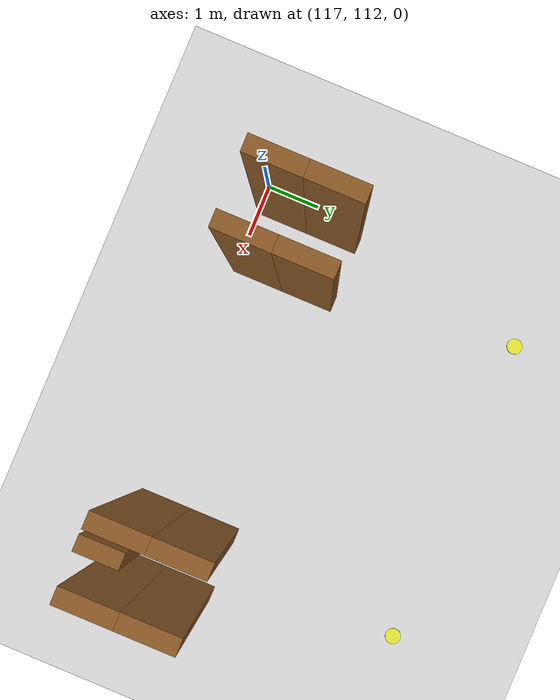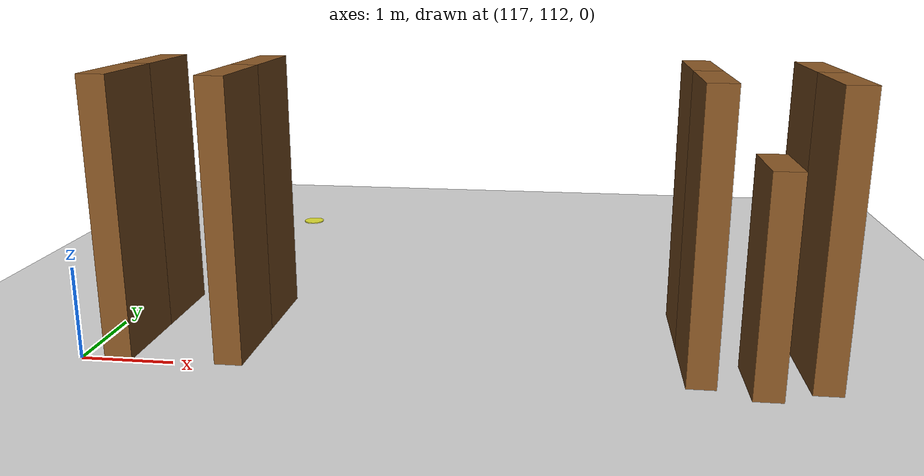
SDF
<sdf version="1.9">
 <world name="realistic_warehouse_150x200m">
  <model name="ground_plane">
   <static>true</static>
   <pose>68.5 102.0 0 0 0 0</pose>
   <link name="ground_link">
    <visual name="ground_visual">
     <geometry><box><size>127.0 194.0 0.01</size></box></geometry>
     <material><ambient>0.85 0.85 0.85 1.0</ambient><diffuse>0.85 0.85 0.85 1.0</diffuse></material>
    </visual>
    <collision name="ground_visual_collision">
     <geometry><box><size>127.0 194.0 0.01</size></box></geometry>
    </collision>
    <collision name="ground_collision">
     <geometry><plane><normal>0 0 1</normal><size>127.0 194.0</size></plane></geometry>
    </collision>
   </link>
  </model>
  <model name="rack_Zone_F_A3_S0_953">
   <static>true</static>
   <pose>117.4 112.5 1.5 0 0 0</pose>
   <link name="rack_Zone_F_A3_S0_953_link">
    <visual name="rack_Zone_F_A3_S0_953_vis">
     <geometry><box><size>0.3 1.0 3.0</size></box></geometry>
     <material><ambient>0.55 0.35 0.15 1.0</ambient><diffuse>0.55 0.35 0.15 1.0</diffuse></material>
    </visual>
    <collision name="rack_Zone_F_A3_S0_953_vis_collision">
     <geometry><box><size>0.3 1.0 3.0</size></box></geometry>
    </collision>
   </link>
  </model>
  <model name="rack_Zone_F_A3_S0_954">
   <static>true</static>
   <pose>117.4 113.5 1.5 0 0 0</pose>
   <link name="rack_Zone_F_A3_S0_954_link">
    <visual name="rack_Zone_F_A3_S0_954_vis">
     <geometry><box><size>0.3 1.0 3.0</size></box></geometry>
     <material><ambient>0.55 0.35 0.15 1.0</ambient><diffuse>0.55 0.35 0.15 1.0</diffuse></material>
    </visual>
    <collision name="rack_Zone_F_A3_S0_954_vis_collision">
     <geometry><box><size>0.3 1.0 3.0</size></box></geometry>
    </collision>
   </link>
  </model>
  <model name="rack_Zone_F_A3_S0_955">
   <static>true</static>
   <pose>118.6 112.5 1.5 0 0 0</pose>
   <link name="rack_Zone_F_A3_S0_955_link">
    <visual name="rack_Zone_F_A3_S0_955_vis">
     <geometry><box><size>0.3 1.0 3.0</size></box></geometry>
     <material><ambient>0.55 0.35 0.15 1.0</ambient><diffuse>0.55 0.35 0.15 1.0</diffuse></material>
    </visual>
    <collision name="rack_Zone_F_A3_S0_955_vis_collision">
     <geometry><box><size>0.3 1.0 3.0</size></box></geometry>
    </collision>
   </link>
  </model>
  <model name="rack_Zone_F_A3_S0_956">
   <static>true</static>
   <pose>118.6 113.5 1.5 0 0 0</pose>
   <link name="rack_Zone_F_A3_S0_956_link">
    <visual name="rack_Zone_F_A3_S0_956_vis">
     <geometry><box><size>0.3 1.0 3.0</size></box></geometry>
     <material><ambient>0.55 0.35 0.15 1.0</ambient><diffuse>0.55 0.35 0.15 1.0</diffuse></material>
    </visual>
    <collision name="rack_Zone_F_A3_S0_956_vis_collision">
     <geometry><box><size>0.3 1.0 3.0</size></box></geometry>
    </collision>
   </link>
  </model>
  <model name="cross_Zone_F_A3_S1_958">
   <static>true</static>
   <pose>118.0 117.5 0.01 0 0 0</pose>
   <link name="cross_Zone_F_A3_S1_958_link">
    <visual name="cross_Zone_F_A3_S1_958_vis">
     <geometry><cylinder><radius>0.15</radius><length>0.02</length></cylinder></geometry>
     <material><ambient>0.9 0.9 0.2 1.0</ambient><diffuse>0.9 0.9 0.2 1.0</diffuse></material>
    </visual>
    <collision name="cross_Zone_F_A3_S1_958_vis_collision">
     <geometry><cylinder><radius>0.15</radius><length>0.02</length></cylinder></geometry>
    </collision>
   </link>
  </model>
  <model name="rack_Zone_F_A4_S0_973">
   <static>true</static>
   <pose>123.4 112.5 1.5 0 0 0</pose>
   <link name="rack_Zone_F_A4_S0_973_link">
    <visual name="rack_Zone_F_A4_S0_973_vis">
     <geometry><box><size>0.3 1.0 3.0</size></box></geometry>
     <material><ambient>0.55 0.35 0.15 1.0</ambient><diffuse>0.55 0.35 0.15 1.0</diffuse></material>
    </visual>
    <collision name="rack_Zone_F_A4_S0_973_vis_collision">
     <geometry><box><size>0.3 1.0 3.0</size></box></geometry>
    </collision>
   </link>
  </model>
  <model name="rack_Zone_F_A4_S0_974">
   <static>true</static>
   <pose>123.4 113.5 1.5 0 0 0</pose>
   <link name="rack_Zone_F_A4_S0_974_link">
    <visual name="rack_Zone_F_A4_S0_974_vis">
     <geometry><box><size>0.3 1.0 3.0</size></box></geometry>
     <material><ambient>0.55 0.35 0.15 1.0</ambient><diffuse>0.55 0.35 0.15 1.0</diffuse></material>
    </visual>
    <collision name="rack_Zone_F_A4_S0_974_vis_collision">
     <geometry><box><size>0.3 1.0 3.0</size></box></geometry>
    </collision>
   </link>
  </model>
  <model name="rack_Zone_F_A4_S0_975">
   <static>true</static>
   <pose>124.6 112.5 1.5 0 0 0</pose>
   <link name="rack_Zone_F_A4_S0_975_link">
    <visual name="rack_Zone_F_A4_S0_975_vis">
     <geometry><box><size>0.3 1.0 3.0</size></box></geometry>
     <material><ambient>0.55 0.35 0.15 1.0</ambient><diffuse>0.55 0.35 0.15 1.0</diffuse></material>
    </visual>
    <collision name="rack_Zone_F_A4_S0_975_vis_collision">
     <geometry><box><size>0.3 1.0 3.0</size></box></geometry>
    </collision>
   </link>
  </model>
  <model name="rack_Zone_F_A4_S0_976">
   <static>true</static>
   <pose>124.6 113.5 1.5 0 0 0</pose>
   <link name="rack_Zone_F_A4_S0_976_link">
    <visual name="rack_Zone_F_A4_S0_976_vis">
     <geometry><box><size>0.3 1.0 3.0</size></box></geometry>
     <material><ambient>0.55 0.35 0.15 1.0</ambient><diffuse>0.55 0.35 0.15 1.0</diffuse></material>
    </visual>
    <collision name="rack_Zone_F_A4_S0_976_vis_collision">
     <geometry><box><size>0.3 1.0 3.0</size></box></geometry>
    </collision>
   </link>
  </model>
  <model name="rack_Zone_F_A4_S0_977">
   <static>true</static>
   <pose>124.0 112.2 1.125 0 0 0</pose>
   <link name="rack_Zone_F_A4_S0_977_link">
    <visual name="rack_Zone_F_A4_S0_977_vis">
     <geometry><box><size>0.3 0.8 2.25</size></box></geometry>
     <material><ambient>0.55 0.35 0.15 1.0</ambient><diffuse>0.55 0.35 0.15 1.0</diffuse></material>
    </visual>
    <collision name="rack_Zone_F_A4_S0_977_vis_collision">
     <geometry><box><size>0.3 0.8 2.25</size></box></geometry>
    </collision>
   </link>
  </model>
  <model name="cross_Zone_F_A4_S1_978">
   <static>true</static>
   <pose>124.0 117.5 0.01 0 0 0</pose>
   <link name="cross_Zone_F_A4_S1_978_link">
    <visual name="cross_Zone_F_A4_S1_978_vis">
     <geometry><cylinder><radius>0.15</radius><length>0.02</length></cylinder></geometry>
     <material><ambient>0.9 0.9 0.2 1.0</ambient><diffuse>0.9 0.9 0.2 1.0</diffuse></material>
    </visual>
    <collision name="cross_Zone_F_A4_S1_978_vis_collision">
     <geometry><cylinder><radius>0.15</radius><length>0.02</length></cylinder></geometry>
    </collision>
   </link>
  </model>
 </world>
</sdf>
